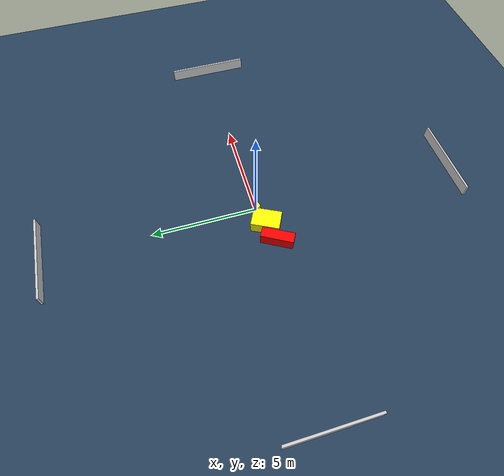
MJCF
<?xml version="1.0" ?>
<mujoco model="generated_environment">
  <option timestep="0.01" integrator="RK4" cone="elliptic"/>
  <default>
    <geom density="1"/>
  </default>
  <asset>
    <texture builtin="gradient" height="3072" name="skybox" rgb1="0.3 0.5 0.7" rgb2="0 0 0" type="skybox" width="512"/>
    <texture builtin="checker" height="300" name="groundplane" rgb1="0.2 0.3 0.4" rgb2="0.1 0.2 0.3" type="2d" width="300"/>
    <material name="groundplane" reflectance="0.2" texrepeat="5 5" texture="groundplane"/>
  </asset>
  <worldbody>
    <light dir="0 0 -1" directional="true" pos="0 0 1.5"/>
    <geom condim="3" friction="0.5 0.005 0.001" material="groundplane" name="floor" pos="0 0 0" size="0 0 0.05" type="plane"/>
    <body name="walls">
      <geom name="wall_1" condim="4" pos="-10.0 0.0 0.3" rgba="0.800000011920929 0.800000011920929 0.800000011920929 1.0" size="0.05 2.0 0.3" type="box"/>
      <geom name="wall_2" condim="4" pos="10.0 0.0 0.3" rgba="0.800000011920929 0.800000011920929 0.800000011920929 1.0" size="0.05 2.0 0.3" type="box"/>
      <geom name="wall_3" condim="4" pos="0.0 -10.0 0.3" rgba="0.800000011920929 0.800000011920929 0.800000011920929 1.0" size="2.0 0.05 0.3" type="box"/>
      <geom name="wall_4" condim="4" pos="0.0 10.0 0.3" rgba="0.800000011920929 0.800000011920929 0.800000011920929 1.0" size="2.0 0.05 0.3" type="box"/>
    </body>
    <body name="robot">
      <joint name="joint_x" type="slide" pos="0 0 0" axis="1 0 0"/>
      <joint name="joint_y" type="slide" pos="0 0 0" axis="0 1 0"/>
      <geom name="robot" type="cylinder" pos="0.0 0.0 0.2" size="0.2 0.2 0.0" mass="5.0" friction="1.0 0.005 0.0001" condim="4" rgba="1.0 1.0 0.0 1.0"/>
    </body>
    <body name="obstacle_1_movable">
      <geom name="obstacle_1_movable" condim="4" pos="-0.914172679385626 -0.23859051375392173 0.3" euler="0 0 153.33058921659588" friction="0.0 0.005 0.001" rgba="1.0 1.0 0.0 1.0" size="0.4621391011435044 0.6642739123045438 0.3" type="box" mass="0.1"/>
      <joint type="free"/>
    </body>
    <body name="obstacle_2_static">
      <geom name="obstacle_2_static" condim="4" pos="-1.898604716491161 -0.47683680116574073 0.3" euler="0 0 330.8810009463684" friction="0.0 0.005 0.001" rgba="1.0 0.0 0.0 1.0" size="0.2528452548196181 0.7627844897269427 0.3" type="box"/>
    </body>
  </worldbody>
  <actuator>
    <motor name="actuator_x" joint="joint_x" gear="1" ctrlrange="-1 1"/>
    <motor name="actuator_y" joint="joint_y" gear="1" ctrlrange="-1 1"/>
  </actuator>
</mujoco>
